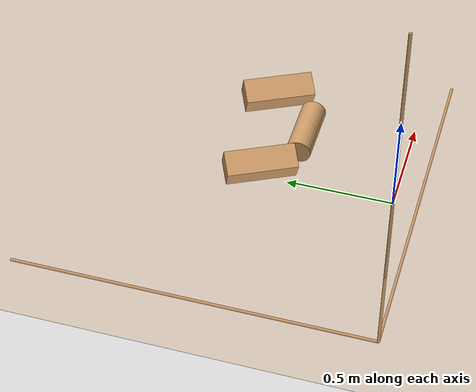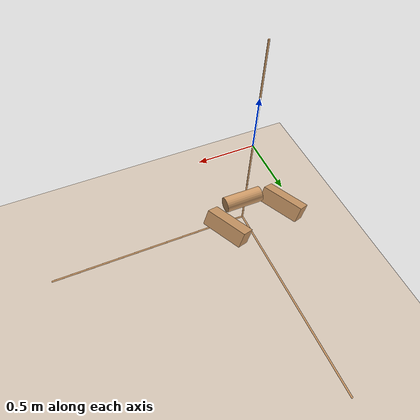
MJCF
<mujoco model="example">
  <default >
    <geom rgba="0.8 0.6 0.4 1"/>
  </default>
  <asset >
    <texture type="skybox" builtin="gradient" rgb1="0.3 0.5 0.7" width="32" height="512"/>
    <texture type="skybox" builtin="gradient" rgb1="0.3 0.5 0.7" width="32" height="512"/>
    <texture type="2d" builtin="checker" rgb1="0.1 0.2 0.3" rgb2="0.2 0.3 0.4" width="512" height="512" name="grid"/>
    <material texture="grid" texuniform="true" texrepeat="1 1" reflectance="0.2" name="grid"/>
    <texture type="2d" builtin="checker" rgb1="0.2 0.3 0.4" rgb2="0.1 0.2 0.3" width="300" height="300" name="groundplane" mark="edge" markrgb="0.8 0.8 0.8"/>
    <material texture="groundplane" texuniform="true" texrepeat="5 5" reflectance="0.2" name="groundplane"/>
    <material rgba="0 0 1 1" name="blue"/>
  </asset>
  <worldbody >
    <light pos="0 1 1" dir="0 -1 -1" diffuse="1 1 1"/>
    <body pos="0 0.0 -0.5">
      <geom material="groundplane" type="plane" size="0 0 0.05" name="floor"/>
    </body>
    <body pos="0 0 0">
      <geom material="blue" type="cylinder" size="0.008 1.0"/>
      <geom material="blue" type="cylinder" size="0.008 1.0" quat="0.7071067811865476 0.7071067811865475 0.0 0.0" pos="0 1.0 -1.0"/>
      <geom material="blue" type="cylinder" size="0.008 1.0" quat="0.7071067811865476 0.0 0.7071067811865475 0.0" pos="1.0 0 -1.0"/>
    </body>
    <body pos="0 0.5 0.01">
      <joint axis="1 0 0"/>
      <geom type="box" size="0.06" fromto="0.15 0 0 -0.001 0.3 0.0"/>
    </body>
    <body pos="0.5 0.5 0.01">
      <joint axis="0 1 0"/>
      <geom type="cylinder" size="0.06" fromto="0 0 0 -0.3 0 0"/>
      <body pos="0 0.05 0.01">
        <joint axis="1 0 0"/>
        <geom type="box" size="0.06" fromto="0.15 0 0 -0.001 0.3 0.0"/>
      </body>
    </body>
  </worldbody>
</mujoco>
